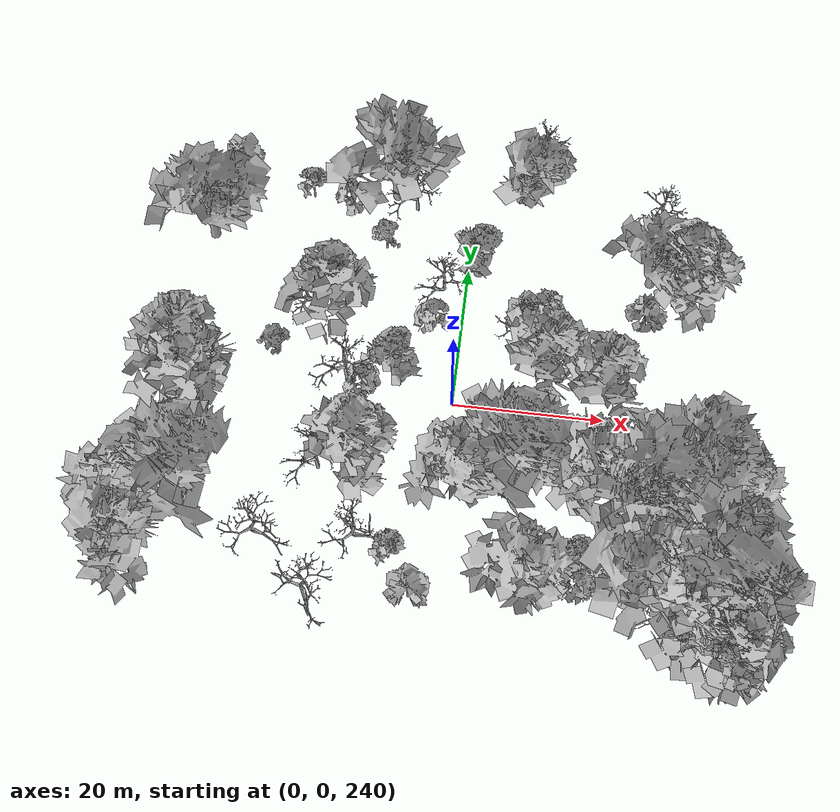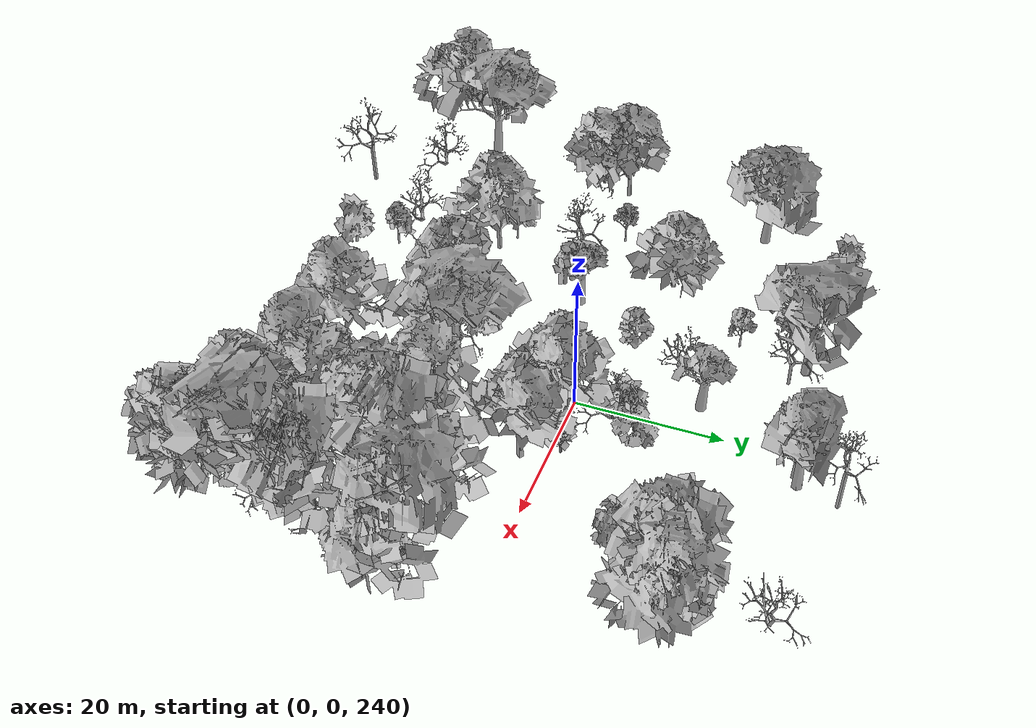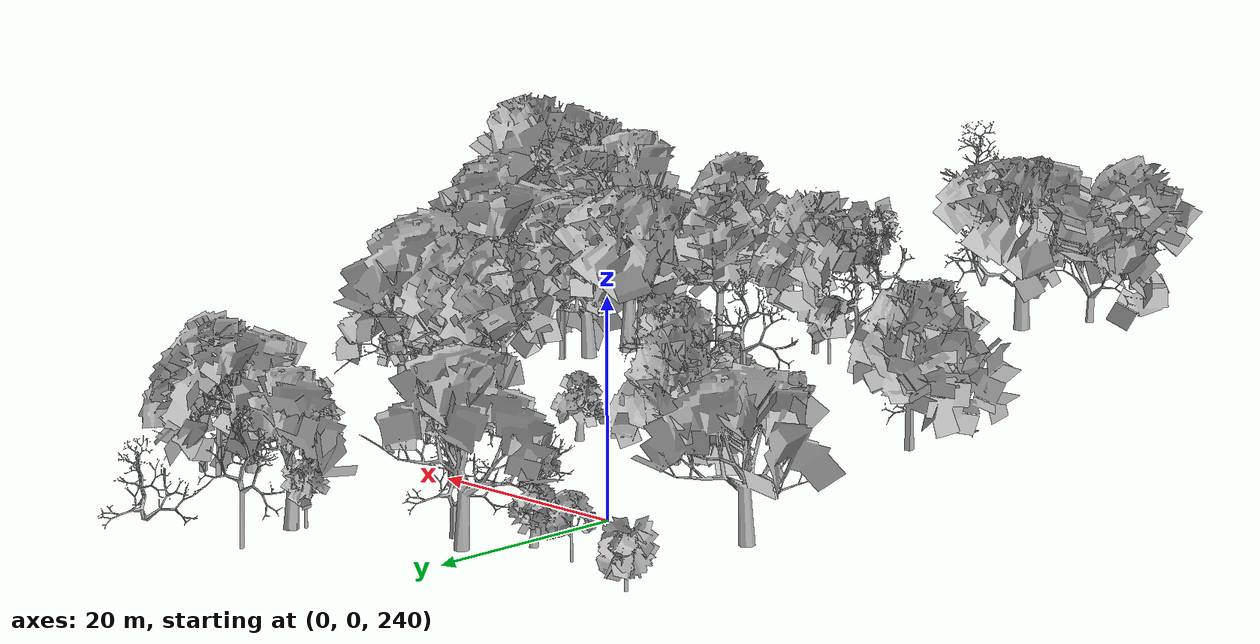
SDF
<sdf version="1.6">
 <world name="default">
  <light name="sun" type="directional">
   <pose>0 0 10 0 -0 0</pose>
   <diffuse>0.8 0.8 0.8 1</diffuse>
   <specular>0.2 0.2 0.2 1</specular>
   <attenuation>
    <range>1000</range>
    <constant>0.9</constant>
    <linear>0.01</linear>
    <quadratic>0.001</quadratic>
   </attenuation>
   <direction>-0.5 0.1 -0.9</direction>
  </light>
  <scene>
   <sky><clouds><speed>12</speed></clouds></sky>
   <ambient>0.4 0.4 0.4 1</ambient>
   <background>0.7 0.7 0.7 1</background>
   <shadows>1</shadows>
  </scene>
  <spherical_coordinates>
   <surface_model>EARTH_WGS84</surface_model>
   <latitude_deg>47.3977</latitude_deg>
   <longitude_deg>8.54559</longitude_deg>
   <elevation>0</elevation>
   <heading_deg>0</heading_deg>
  </spherical_coordinates>
  <physics name="default_physics" default="0" type="ode">
   <ode>
    <solver>
     <type>quick</type>
     <iters>100</iters>
     <sor>1.3</sor>
     <use_dynamic_moi_rescaling>0</use_dynamic_moi_rescaling>
    </solver>
    <constraints>
     <cfm>0</cfm>
     <erp>0.2</erp>
     <contact_max_correcting_vel>100</contact_max_correcting_vel>
     <contact_surface_layer>0.001</contact_surface_layer>
    </constraints>
   </ode>
   <max_step_size>0.002</max_step_size>
   <real_time_factor>1</real_time_factor>
   <real_time_update_rate>500</real_time_update_rate>
  </physics>
  <gravity>0 0 -9.8</gravity>
  <magnetic_field>6e-06 2.3e-05 -4.2e-05</magnetic_field>
  <atmosphere type="adiabatic"/>
  <model name="my_mesh0">
   <pose>34.4092 -20.709 248.489 0 0 -0.077044</pose>
   <static>1</static>
   <link name="body">
    <visual name="visual">
     <geometry><mesh><uri>model://trees/19.dae</uri><scale>1 1 1</scale></mesh></geometry>
    </visual>
    <collision name="collision">
     <geometry><mesh><uri>model://trees/19.dae</uri><scale>1 1 1</scale></mesh></geometry>
    </collision>
   </link>
  </model>
  <model name="my_mesh1">
   <pose>33.045 -22.724 249.559 0 -0 0.10892</pose>
   <static>1</static>
   <link name="body">
    <visual name="visual">
     <geometry><mesh><uri>model://trees/17.dae</uri><scale>1 1 1</scale></mesh></geometry>
    </visual>
    <collision name="collision">
     <geometry><mesh><uri>model://trees/17.dae</uri><scale>1 1 1</scale></mesh></geometry>
    </collision>
   </link>
  </model>
  <model name="my_mesh2">
   <pose>34.4534 -31.9423 253.007 0 -0 1.52434</pose>
   <static>1</static>
   <link name="body">
    <visual name="visual">
     <geometry><mesh><uri>model://trees/12.dae</uri><scale>1 1 1</scale></mesh></geometry>
    </visual>
    <collision name="collision">
     <geometry><mesh><uri>model://trees/12.dae</uri><scale>1 1 1</scale></mesh></geometry>
    </collision>
   </link>
  </model>
  <model name="my_mesh3">
   <pose>35.0355 -8.75063 244.764 0 0 -1.3783</pose>
   <static>1</static>
   <link name="body">
    <visual name="visual">
     <geometry><mesh><uri>model://trees/1.dae</uri><scale>1 1 1</scale></mesh></geometry>
    </visual>
    <collision name="collision">
     <geometry><mesh><uri>model://trees/1.dae</uri><scale>1 1 1</scale></mesh></geometry>
    </collision>
   </link>
  </model>
  <model name="my_mesh4">
   <pose>35.7739 -26.6644 251.328 0 -0 1.35673</pose>
   <static>1</static>
   <link name="body">
    <visual name="visual">
     <geometry><mesh><uri>model://trees/4.dae</uri><scale>1 1 1</scale></mesh></geometry>
    </visual>
    <collision name="collision">
     <geometry><mesh><uri>model://trees/4.dae</uri><scale>1 1 1</scale></mesh></geometry>
    </collision>
   </link>
  </model>
  <model name="my_mesh5">
   <pose>35.1608 -34.8266 254.46 0 -0 1.05813</pose>
   <static>1</static>
   <link name="body">
    <visual name="visual">
     <geometry><mesh><uri>model://trees/7.dae</uri><scale>1 1 1</scale></mesh></geometry>
    </visual>
    <collision name="collision">
     <geometry><mesh><uri>model://trees/7.dae</uri><scale>1 1 1</scale></mesh></geometry>
    </collision>
   </link>
  </model>
  <model name="my_mesh6">
   <pose>31.8572 -24.2923 250.301 0 0 -1.06784</pose>
   <static>1</static>
   <link name="body">
    <visual name="visual">
     <geometry><mesh><uri>model://trees/14.dae</uri><scale>1 1 1</scale></mesh></geometry>
    </visual>
    <collision name="collision">
     <geometry><mesh><uri>model://trees/14.dae</uri><scale>1 1 1</scale></mesh></geometry>
    </collision>
   </link>
  </model>
  <model name="my_mesh7">
   <pose>28.3298 -21.8858 250.316 0 -0 1.36054</pose>
   <static>1</static>
   <link name="body">
    <visual name="visual">
     <geometry><mesh><uri>model://trees/2.dae</uri><scale>1 1 1</scale></mesh></geometry>
    </visual>
    <collision name="collision">
     <geometry><mesh><uri>model://trees/2.dae</uri><scale>1 1 1</scale></mesh></geometry>
    </collision>
   </link>
  </model>
  <model name="my_mesh8">
   <pose>35.5363 -31.2773 252.821 0 -0 0.125793</pose>
   <static>1</static>
   <link name="body">
    <visual name="visual">
     <geometry><mesh><uri>model://trees/13.dae</uri><scale>1 1 1</scale></mesh></geometry>
    </visual>
    <collision name="collision">
     <geometry><mesh><uri>model://trees/13.dae</uri><scale>1 1 1</scale></mesh></geometry>
    </collision>
   </link>
  </model>
  <model name="my_mesh9">
   <pose>35.8994 -9.88777 245.362 0 0 -0.838774</pose>
   <static>1</static>
   <link name="body">
    <visual name="visual">
     <geometry><mesh><uri>model://trees/12.dae</uri><scale>1 1 1</scale></mesh></geometry>
    </visual>
    <collision name="collision">
     <geometry><mesh><uri>model://trees/12.dae</uri><scale>1 1 1</scale></mesh></geometry>
    </collision>
   </link>
  </model>
  <model name="my_mesh10">
   <pose>34.8921 -32.9507 253.702 0 -0 0.903182</pose>
   <static>1</static>
   <link name="body">
    <visual name="visual">
     <geometry><mesh><uri>model://trees/12.dae</uri><scale>1 1 1</scale></mesh></geometry>
    </visual>
    <collision name="collision">
     <geometry><mesh><uri>model://trees/12.dae</uri><scale>1 1 1</scale></mesh></geometry>
    </collision>
   </link>
  </model>
  <model name="my_mesh11">
   <pose>35.0666 -19.6369 248.384 0 0 -1.01804</pose>
   <static>1</static>
   <link name="body">
    <visual name="visual">
     <geometry><mesh><uri>model://trees/14.dae</uri><scale>1 1 1</scale></mesh></geometry>
    </visual>
    <collision name="collision">
     <geometry><mesh><uri>model://trees/14.dae</uri><scale>1 1 1</scale></mesh></geometry>
    </collision>
   </link>
  </model>
  <model name="my_mesh12">
   <pose>35.368 -16.9697 247.311 0 0 -0.239199</pose>
   <static>1</static>
   <link name="body">
    <visual name="visual">
     <geometry><mesh><uri>model://trees/19.dae</uri><scale>1 1 1</scale></mesh></geometry>
    </visual>
    <collision name="collision">
     <geometry><mesh><uri>model://trees/19.dae</uri><scale>1 1 1</scale></mesh></geometry>
    </collision>
   </link>
  </model>
  <model name="my_mesh13">
   <pose>35.2895 -27.2689 251.562 0 -0 1.1609</pose>
   <static>1</static>
   <link name="body">
    <visual name="visual">
     <geometry><mesh><uri>model://trees/14.dae</uri><scale>1 1 1</scale></mesh></geometry>
    </visual>
    <collision name="collision">
     <geometry><mesh><uri>model://trees/14.dae</uri><scale>1 1 1</scale></mesh></geometry>
    </collision>
   </link>
  </model>
  <model name="my_mesh14">
   <pose>29.0781 -28.1886 252.11 0 -0 1.07024</pose>
   <static>1</static>
   <link name="body">
    <visual name="visual">
     <geometry><mesh><uri>model://trees/15.dae</uri><scale>1 1 1</scale></mesh></geometry>
    </visual>
    <collision name="collision">
     <geometry><mesh><uri>model://trees/15.dae</uri><scale>1 1 1</scale></mesh></geometry>
    </collision>
   </link>
  </model>
  <model name="my_mesh15">
   <pose>33.3966 -20.8468 248.642 0 -0 1.34337</pose>
   <static>1</static>
   <link name="body">
    <visual name="visual">
     <geometry><mesh><uri>model://trees/16.dae</uri><scale>1 1 1</scale></mesh></geometry>
    </visual>
    <collision name="collision">
     <geometry><mesh><uri>model://trees/16.dae</uri><scale>1 1 1</scale></mesh></geometry>
    </collision>
   </link>
  </model>
  <model name="my_mesh16">
   <pose>34.9242 -13.7099 246.125 0 -0 1.54237</pose>
   <static>1</static>
   <link name="body">
    <visual name="visual">
     <geometry><mesh><uri>model://trees/1.dae</uri><scale>1 1 1</scale></mesh></geometry>
    </visual>
    <collision name="collision">
     <geometry><mesh><uri>model://trees/1.dae</uri><scale>1 1 1</scale></mesh></geometry>
    </collision>
   </link>
  </model>
  <model name="my_mesh17">
   <pose>28.7213 -32.0403 253.013 0 0 -0.090279</pose>
   <static>1</static>
   <link name="body">
    <visual name="visual">
     <geometry><mesh><uri>model://trees/6.dae</uri><scale>1 1 1</scale></mesh></geometry>
    </visual>
    <collision name="collision">
     <geometry><mesh><uri>model://trees/6.dae</uri><scale>1 1 1</scale></mesh></geometry>
    </collision>
   </link>
  </model>
  <model name="my_mesh18">
   <pose>29.9117 -25.1239 250.972 0 -0 1.32643</pose>
   <static>1</static>
   <link name="body">
    <visual name="visual">
     <geometry><mesh><uri>model://trees/15.dae</uri><scale>1 1 1</scale></mesh></geometry>
    </visual>
    <collision name="collision">
     <geometry><mesh><uri>model://trees/15.dae</uri><scale>1 1 1</scale></mesh></geometry>
    </collision>
   </link>
  </model>
  <model name="my_mesh19">
   <pose>35.9972 -25.1492 250.808 0 0 -0.62607</pose>
   <static>1</static>
   <link name="body">
    <visual name="visual">
     <geometry><mesh><uri>model://trees/6.dae</uri><scale>1 1 1</scale></mesh></geometry>
    </visual>
    <collision name="collision">
     <geometry><mesh><uri>model://trees/6.dae</uri><scale>1 1 1</scale></mesh></geometry>
    </collision>
   </link>
  </model>
  <model name="my_mesh20">
   <pose>35.4079 -34.3158 254.117 0 0 -0.93915</pose>
   <static>1</static>
   <link name="body">
    <visual name="visual">
     <geometry><mesh><uri>model://trees/1.dae</uri><scale>1 1 1</scale></mesh></geometry>
    </visual>
    <collision name="collision">
     <geometry><mesh><uri>model://trees/1.dae</uri><scale>1 1 1</scale></mesh></geometry>
    </collision>
   </link>
  </model>
  <model name="my_mesh21">
   <pose>31.965 -20.672 248.949 0 0 -1.16144</pose>
   <static>1</static>
   <link name="body">
    <visual name="visual">
     <geometry><mesh><uri>model://trees/17.dae</uri><scale>1 1 1</scale></mesh></geometry>
    </visual>
    <collision name="collision">
     <geometry><mesh><uri>model://trees/17.dae</uri><scale>1 1 1</scale></mesh></geometry>
    </collision>
   </link>
  </model>
  <model name="my_mesh22">
   <pose>33.1102 -21.3474 248.931 0 0 -1.0466</pose>
   <static>1</static>
   <link name="body">
    <visual name="visual">
     <geometry><mesh><uri>model://trees/9.dae</uri><scale>1 1 1</scale></mesh></geometry>
    </visual>
    <collision name="collision">
     <geometry><mesh><uri>model://trees/9.dae</uri><scale>1 1 1</scale></mesh></geometry>
    </collision>
   </link>
  </model>
  <model name="my_mesh23">
   <pose>35.971 -20.7977 248.856 0 -0 1.2378</pose>
   <static>1</static>
   <link name="body">
    <visual name="visual">
     <geometry><mesh><uri>model://trees/16.dae</uri><scale>1 1 1</scale></mesh></geometry>
    </visual>
    <collision name="collision">
     <geometry><mesh><uri>model://trees/16.dae</uri><scale>1 1 1</scale></mesh></geometry>
    </collision>
   </link>
  </model>
  <model name="my_mesh24">
   <pose>33.5265 -32.3898 253.4 0 -0 0.12638</pose>
   <static>1</static>
   <link name="body">
    <visual name="visual">
     <geometry><mesh><uri>model://trees/3.dae</uri><scale>1 1 1</scale></mesh></geometry>
    </visual>
    <collision name="collision">
     <geometry><mesh><uri>model://trees/3.dae</uri><scale>1 1 1</scale></mesh></geometry>
    </collision>
   </link>
  </model>
  <model name="my_mesh25">
   <pose>35.0981 -30.0957 252.27 0 -0 1.2369</pose>
   <static>1</static>
   <link name="body">
    <visual name="visual">
     <geometry><mesh><uri>model://trees/13.dae</uri><scale>1 1 1</scale></mesh></geometry>
    </visual>
    <collision name="collision">
     <geometry><mesh><uri>model://trees/13.dae</uri><scale>1 1 1</scale></mesh></geometry>
    </collision>
   </link>
  </model>
  <model name="my_mesh26">
   <pose>35.7482 -14.1029 246.372 0 0 -1.42816</pose>
   <static>1</static>
   <link name="body">
    <visual name="visual">
     <geometry><mesh><uri>model://trees/5.dae</uri><scale>1 1 1</scale></mesh></geometry>
    </visual>
    <collision name="collision">
     <geometry><mesh><uri>model://trees/5.dae</uri><scale>1 1 1</scale></mesh></geometry>
    </collision>
   </link>
  </model>
  <model name="my_mesh27">
   <pose>29.1155 -29.2898 252.337 0 -0 1.1691</pose>
   <static>1</static>
   <link name="body">
    <visual name="visual">
     <geometry><mesh><uri>model://trees/12.dae</uri><scale>1 1 1</scale></mesh></geometry>
    </visual>
    <collision name="collision">
     <geometry><mesh><uri>model://trees/12.dae</uri><scale>1 1 1</scale></mesh></geometry>
    </collision>
   </link>
  </model>
  <model name="my_mesh28">
   <pose>34.6977 -26.3449 250.967 0 0 -0.231401</pose>
   <static>1</static>
   <link name="body">
    <visual name="visual">
     <geometry><mesh><uri>model://trees/10.dae</uri><scale>1 1 1</scale></mesh></geometry>
    </visual>
    <collision name="collision">
     <geometry><mesh><uri>model://trees/10.dae</uri><scale>1 1 1</scale></mesh></geometry>
    </collision>
   </link>
  </model>
  <model name="my_mesh29">
   <pose>34.1501 -28.5294 251.729 0 0 -0.093509</pose>
   <static>1</static>
   <link name="body">
    <visual name="visual">
     <geometry><mesh><uri>model://trees/14.dae</uri><scale>1 1 1</scale></mesh></geometry>
    </visual>
    <collision name="collision">
     <geometry><mesh><uri>model://trees/14.dae</uri><scale>1 1 1</scale></mesh></geometry>
    </collision>
   </link>
  </model>
  <model name="my_mesh30">
   <pose>35.3026 -34.1232 254.117 0 -0 0.911018</pose>
   <static>1</static>
   <link name="body">
    <visual name="visual">
     <geometry><mesh><uri>model://trees/0.dae</uri><scale>1 1 1</scale></mesh></geometry>
    </visual>
    <collision name="collision">
     <geometry><mesh><uri>model://trees/0.dae</uri><scale>1 1 1</scale></mesh></geometry>
    </collision>
   </link>
  </model>
  <model name="my_mesh31">
   <pose>33.272 -29.6755 252.104 0 0 -1.36349</pose>
   <static>1</static>
   <link name="body">
    <visual name="visual">
     <geometry><mesh><uri>model://trees/3.dae</uri><scale>1 1 1</scale></mesh></geometry>
    </visual>
    <collision name="collision">
     <geometry><mesh><uri>model://trees/3.dae</uri><scale>1 1 1</scale></mesh></geometry>
    </collision>
   </link>
  </model>
  <model name="my_mesh32">
   <pose>21.0194 -26.9574 253.632 0 -0 1.55134</pose>
   <static>1</static>
   <link name="body">
    <visual name="visual">
     <geometry><mesh><uri>model://trees/4.dae</uri><scale>1 1 1</scale></mesh></geometry>
    </visual>
    <collision name="collision">
     <geometry><mesh><uri>model://trees/4.dae</uri><scale>1 1 1</scale></mesh></geometry>
    </collision>
   </link>
  </model>
  <model name="my_mesh33">
   <pose>11.119 10.9236 246.945 0 -0 1.31277</pose>
   <static>1</static>
   <link name="body">
    <visual name="visual">
     <geometry><mesh><uri>model://trees/4.dae</uri><scale>1 1 1</scale></mesh></geometry>
    </visual>
    <collision name="collision">
     <geometry><mesh><uri>model://trees/4.dae</uri><scale>1 1 1</scale></mesh></geometry>
    </collision>
   </link>
  </model>
  <model name="my_mesh34">
   <pose>30.8941 -9.21117 245.86 0 0 -0.54359</pose>
   <static>1</static>
   <link name="body">
    <visual name="visual">
     <geometry><mesh><uri>model://trees/9.dae</uri><scale>1 1 1</scale></mesh></geometry>
    </visual>
    <collision name="collision">
     <geometry><mesh><uri>model://trees/9.dae</uri><scale>1 1 1</scale></mesh></geometry>
    </collision>
   </link>
  </model>
  <model name="my_mesh35">
   <pose>26.0179 -26.0619 252.192 0 -0 0.266957</pose>
   <static>1</static>
   <link name="body">
    <visual name="visual">
     <geometry><mesh><uri>model://trees/17.dae</uri><scale>1 1 1</scale></mesh></geometry>
    </visual>
    <collision name="collision">
     <geometry><mesh><uri>model://trees/17.dae</uri><scale>1 1 1</scale></mesh></geometry>
    </collision>
   </link>
  </model>
  <model name="my_mesh36">
   <pose>8.39136 9.22707 247.374 0 0 -0.845959</pose>
   <static>1</static>
   <link name="body">
    <visual name="visual">
     <geometry><mesh><uri>model://trees/5.dae</uri><scale>1 1 1</scale></mesh></geometry>
    </visual>
    <collision name="collision">
     <geometry><mesh><uri>model://trees/5.dae</uri><scale>1 1 1</scale></mesh></geometry>
    </collision>
   </link>
  </model>
  <model name="my_mesh37">
   <pose>23.8225 12.2998 244.997 0 0 -0.506443</pose>
   <static>1</static>
   <link name="body">
    <visual name="visual">
     <geometry><mesh><uri>model://trees/4.dae</uri><scale>1 1 1</scale></mesh></geometry>
    </visual>
    <collision name="collision">
     <geometry><mesh><uri>model://trees/4.dae</uri><scale>1 1 1</scale></mesh></geometry>
    </collision>
   </link>
  </model>
  <model name="my_mesh38">
   <pose>11.1297 -13.6024 250.77 0 0 -1.43948</pose>
   <static>1</static>
   <link name="body">
    <visual name="visual">
     <geometry><mesh><uri>model://trees/11.dae</uri><scale>1 1 1</scale></mesh></geometry>
    </visual>
    <collision name="collision">
     <geometry><mesh><uri>model://trees/11.dae</uri><scale>1 1 1</scale></mesh></geometry>
    </collision>
   </link>
  </model>
  <model name="my_mesh39">
   <pose>-12.6541 -3.62767 251.851 0 0 -0.813717</pose>
   <static>1</static>
   <link name="body">
    <visual name="visual">
     <geometry><mesh><uri>model://trees/16.dae</uri><scale>1 1 1</scale></mesh></geometry>
    </visual>
    <collision name="collision">
     <geometry><mesh><uri>model://trees/16.dae</uri><scale>1 1 1</scale></mesh></geometry>
    </collision>
   </link>
  </model>
  <model name="my_mesh40">
   <pose>10.4104 -26.6352 254.684 0 0 -0.238079</pose>
   <static>1</static>
   <link name="body">
    <visual name="visual">
     <geometry><mesh><uri>model://trees/12.dae</uri><scale>1 1 1</scale></mesh></geometry>
    </visual>
    <collision name="collision">
     <geometry><mesh><uri>model://trees/12.dae</uri><scale>1 1 1</scale></mesh></geometry>
    </collision>
   </link>
  </model>
  <model name="my_mesh41">
   <pose>25.2871 -8.73668 247.3 0 0 -0.359366</pose>
   <static>1</static>
   <link name="body">
    <visual name="visual">
     <geometry><mesh><uri>model://trees/12.dae</uri><scale>1 1 1</scale></mesh></geometry>
    </visual>
    <collision name="collision">
     <geometry><mesh><uri>model://trees/12.dae</uri><scale>1 1 1</scale></mesh></geometry>
    </collision>
   </link>
  </model>
  <model name="my_mesh42">
   <pose>28.7871 -12.9958 246.953 0 -0 1.47405</pose>
   <static>1</static>
   <link name="body">
    <visual name="visual">
     <geometry><mesh><uri>model://trees/16.dae</uri><scale>1 1 1</scale></mesh></geometry>
    </visual>
    <collision name="collision">
     <geometry><mesh><uri>model://trees/16.dae</uri><scale>1 1 1</scale></mesh></geometry>
    </collision>
   </link>
  </model>
  <model name="my_mesh43">
   <pose>-3.36773 6.78929 249.15 0 -0 0.861656</pose>
   <static>1</static>
   <link name="body">
    <visual name="visual">
     <geometry><mesh><uri>model://trees/0.dae</uri><scale>1 1 1</scale></mesh></geometry>
    </visual>
    <collision name="collision">
     <geometry><mesh><uri>model://trees/0.dae</uri><scale>1 1 1</scale></mesh></geometry>
    </collision>
   </link>
  </model>
  <model name="my_mesh44">
   <pose>5.91485 -13.3321 251.639 0 0 -0.901411</pose>
   <static>1</static>
   <link name="body">
    <visual name="visual">
     <geometry><mesh><uri>model://trees/18.dae</uri><scale>1 1 1</scale></mesh></geometry>
    </visual>
    <collision name="collision">
     <geometry><mesh><uri>model://trees/18.dae</uri><scale>1 1 1</scale></mesh></geometry>
    </collision>
   </link>
  </model>
  <model name="my_mesh45">
   <pose>22.5311 -16.9752 250.012 0 0 -0.174917</pose>
   <static>1</static>
   <link name="body">
    <visual name="visual">
     <geometry><mesh><uri>model://trees/8.dae</uri><scale>1 1 1</scale></mesh></geometry>
    </visual>
    <collision name="collision">
     <geometry><mesh><uri>model://trees/8.dae</uri><scale>1 1 1</scale></mesh></geometry>
    </collision>
   </link>
  </model>
  <model name="my_mesh46">
   <pose>8.67164 9.01265 247.374 0 -0 0.460806</pose>
   <static>1</static>
   <link name="body">
    <visual name="visual">
     <geometry><mesh><uri>model://trees/6.dae</uri><scale>1 1 1</scale></mesh></geometry>
    </visual>
    <collision name="collision">
     <geometry><mesh><uri>model://trees/6.dae</uri><scale>1 1 1</scale></mesh></geometry>
    </collision>
   </link>
  </model>
  <model name="my_mesh47">
   <pose>17.2348 -27.6362 254.675 0 0 -1.38482</pose>
   <static>1</static>
   <link name="body">
    <visual name="visual">
     <geometry><mesh><uri>model://trees/0.dae</uri><scale>1 1 1</scale></mesh></geometry>
    </visual>
    <collision name="collision">
     <geometry><mesh><uri>model://trees/0.dae</uri><scale>1 1 1</scale></mesh></geometry>
    </collision>
   </link>
  </model>
  <model name="my_mesh48">
   <pose>-1.57248 -31.1219 257.363 0 0 -0.833231</pose>
   <static>1</static>
   <link name="body">
    <visual name="visual">
     <geometry><mesh><uri>model://trees/5.dae</uri><scale>1 1 1</scale></mesh></geometry>
    </visual>
    <collision name="collision">
     <geometry><mesh><uri>model://trees/5.dae</uri><scale>1 1 1</scale></mesh></geometry>
    </collision>
   </link>
  </model>
  <model name="my_mesh49">
   <pose>-2.58745 13.318 247.284 0 0 -0.662197</pose>
   <static>1</static>
   <link name="body">
    <visual name="visual">
     <geometry><mesh><uri>model://trees/18.dae</uri><scale>1 1 1</scale></mesh></geometry>
    </visual>
    <collision name="collision">
     <geometry><mesh><uri>model://trees/18.dae</uri><scale>1 1 1</scale></mesh></geometry>
    </collision>
   </link>
  </model>
  <model name="my_mesh50">
   <pose>8.62303 -15.0074 251.508 0 -0 1.50107</pose>
   <static>1</static>
   <link name="body">
    <visual name="visual">
     <geometry><mesh><uri>model://trees/4.dae</uri><scale>1 1 1</scale></mesh></geometry>
    </visual>
    <collision name="collision">
     <geometry><mesh><uri>model://trees/4.dae</uri><scale>1 1 1</scale></mesh></geometry>
    </collision>
   </link>
  </model>
  <model name="my_mesh51">
   <pose>1.98411 -15.785 252.372 0 0 -1.36285</pose>
   <static>1</static>
   <link name="body">
    <visual name="visual">
     <geometry><mesh><uri>model://trees/14.dae</uri><scale>1 1 1</scale></mesh></geometry>
    </visual>
    <collision name="collision">
     <geometry><mesh><uri>model://trees/14.dae</uri><scale>1 1 1</scale></mesh></geometry>
    </collision>
   </link>
  </model>
  <model name="my_mesh52">
   <pose>11.2786 1.56778 248.904 0 0 -0.22262</pose>
   <static>1</static>
   <link name="body">
    <visual name="visual">
     <geometry><mesh><uri>model://trees/14.dae</uri><scale>1 1 1</scale></mesh></geometry>
    </visual>
    <collision name="collision">
     <geometry><mesh><uri>model://trees/14.dae</uri><scale>1 1 1</scale></mesh></geometry>
    </collision>
   </link>
  </model>
  <model name="my_mesh53">
   <pose>14.8429 -12.5141 249.763 0 0 -0.942703</pose>
   <static>1</static>
   <link name="body">
    <visual name="visual">
     <geometry><mesh><uri>model://trees/7.dae</uri><scale>1 1 1</scale></mesh></geometry>
    </visual>
    <collision name="collision">
     <geometry><mesh><uri>model://trees/7.dae</uri><scale>1 1 1</scale></mesh></geometry>
    </collision>
   </link>
  </model>
  <model name="my_mesh54">
   <pose>21.9441 -25.7696 252.961 0 0 -0.439381</pose>
   <static>1</static>
   <link name="body">
    <visual name="visual">
     <geometry><mesh><uri>model://trees/11.dae</uri><scale>1 1 1</scale></mesh></geometry>
    </visual>
    <collision name="collision">
     <geometry><mesh><uri>model://trees/11.dae</uri><scale>1 1 1</scale></mesh></geometry>
    </collision>
   </link>
  </model>
  <model name="my_mesh55">
   <pose>8.44232 7.56859 247.712 0 -0 0.698009</pose>
   <static>1</static>
   <link name="body">
    <visual name="visual">
     <geometry><mesh><uri>model://trees/18.dae</uri><scale>1 1 1</scale></mesh></geometry>
    </visual>
    <collision name="collision">
     <geometry><mesh><uri>model://trees/18.dae</uri><scale>1 1 1</scale></mesh></geometry>
    </collision>
   </link>
  </model>
  <model name="my_mesh56">
   <pose>34.4975 -13.8823 246.372 0 0 -0.064742</pose>
   <static>1</static>
   <link name="body">
    <visual name="visual">
     <geometry><mesh><uri>model://trees/0.dae</uri><scale>1 1 1</scale></mesh></geometry>
    </visual>
    <collision name="collision">
     <geometry><mesh><uri>model://trees/0.dae</uri><scale>1 1 1</scale></mesh></geometry>
    </collision>
   </link>
  </model>
  <model name="my_mesh57">
   <pose>-4.49882 -26.563 256.218 0 0 -0.12235</pose>
   <static>1</static>
   <link name="body">
    <visual name="visual">
     <geometry><mesh><uri>model://trees/6.dae</uri><scale>1 1 1</scale></mesh></geometry>
    </visual>
    <collision name="collision">
     <geometry><mesh><uri>model://trees/6.dae</uri><scale>1 1 1</scale></mesh></geometry>
    </collision>
   </link>
  </model>
  <model name="my_mesh58">
   <pose>17.473 -11.7639 249.24 0 0 -0.247267</pose>
   <static>1</static>
   <link name="body">
    <visual name="visual">
     <geometry><mesh><uri>model://trees/15.dae</uri><scale>1 1 1</scale></mesh></geometry>
    </visual>
    <collision name="collision">
     <geometry><mesh><uri>model://trees/15.dae</uri><scale>1 1 1</scale></mesh></geometry>
    </collision>
   </link>
  </model>
  <model name="my_mesh59">
   <pose>3.83792 -10.9328 251.524 0 0 -1.22255</pose>
   <static>1</static>
   <link name="body">
    <visual name="visual">
     <geometry><mesh><uri>model://trees/5.dae</uri><scale>1 1 1</scale></mesh></geometry>
    </visual>
    <collision name="collision">
     <geometry><mesh><uri>model://trees/5.dae</uri><scale>1 1 1</scale></mesh></geometry>
    </collision>
   </link>
  </model>
  <model name="my_mesh60">
   <pose>-19.7531 -26.2993 259.872 0 -0 1.36034</pose>
   <static>1</static>
   <link name="body">
    <visual name="visual">
     <geometry><mesh><uri>model://trees/19.dae</uri><scale>1 1 1</scale></mesh></geometry>
    </visual>
    <collision name="collision">
     <geometry><mesh><uri>model://trees/19.dae</uri><scale>1 1 1</scale></mesh></geometry>
    </collision>
   </link>
  </model>
  <model name="my_mesh61">
   <pose>-28.1746 -21.9799 258.216 0 -0 0.793224</pose>
   <static>1</static>
   <link name="body">
    <visual name="visual">
     <geometry><mesh><uri>model://trees/9.dae</uri><scale>1 1 1</scale></mesh></geometry>
    </visual>
    <collision name="collision">
     <geometry><mesh><uri>model://trees/9.dae</uri><scale>1 1 1</scale></mesh></geometry>
    </collision>
   </link>
  </model>
  <model name="my_mesh62">
   <pose>24.2441 -22.1854 251.328 0 0 -0.509422</pose>
   <static>1</static>
   <link name="body">
    <visual name="visual">
     <geometry><mesh><uri>model://trees/15.dae</uri><scale>1 1 1</scale></mesh></geometry>
    </visual>
    <collision name="collision">
     <geometry><mesh><uri>model://trees/15.dae</uri><scale>1 1 1</scale></mesh></geometry>
    </collision>
   </link>
  </model>
  <model name="my_mesh63">
   <pose>-8.53385 -24.8394 257.858 0 -0 1.54594</pose>
   <static>1</static>
   <link name="body">
    <visual name="visual">
     <geometry><mesh><uri>model://trees/18.dae</uri><scale>1 1 1</scale></mesh></geometry>
    </visual>
    <collision name="collision">
     <geometry><mesh><uri>model://trees/18.dae</uri><scale>1 1 1</scale></mesh></geometry>
    </collision>
   </link>
  </model>
  <model name="my_mesh64">
   <pose>-16.3432 24.993 245.854 0 0 -0.252171</pose>
   <static>1</static>
   <link name="body">
    <visual name="visual">
     <geometry><mesh><uri>model://trees/0.dae</uri><scale>1 1 1</scale></mesh></geometry>
    </visual>
    <collision name="collision">
     <geometry><mesh><uri>model://trees/0.dae</uri><scale>1 1 1</scale></mesh></geometry>
    </collision>
   </link>
  </model>
  <model name="my_mesh65">
   <pose>-10.5696 -4.2572 251.863 0 0 -1.27779</pose>
   <static>1</static>
   <link name="body">
    <visual name="visual">
     <geometry><mesh><uri>model://trees/1.dae</uri><scale>1 1 1</scale></mesh></geometry>
    </visual>
    <collision name="collision">
     <geometry><mesh><uri>model://trees/1.dae</uri><scale>1 1 1</scale></mesh></geometry>
    </collision>
   </link>
  </model>
  <model name="my_mesh66">
   <pose>-10.9266 18.9135 246.624 0 -0 1.04968</pose>
   <static>1</static>
   <link name="body">
    <visual name="visual">
     <geometry><mesh><uri>model://trees/3.dae</uri><scale>1 1 1</scale></mesh></geometry>
    </visual>
    <collision name="collision">
     <geometry><mesh><uri>model://trees/3.dae</uri><scale>1 1 1</scale></mesh></geometry>
    </collision>
   </link>
  </model>
  <model name="my_mesh67">
   <pose>7.8323 30.0557 243.695 0 0 -1.04013</pose>
   <static>1</static>
   <link name="body">
    <visual name="visual">
     <geometry><mesh><uri>model://trees/11.dae</uri><scale>1 1 1</scale></mesh></geometry>
    </visual>
    <collision name="collision">
     <geometry><mesh><uri>model://trees/11.dae</uri><scale>1 1 1</scale></mesh></geometry>
    </collision>
   </link>
  </model>
  <model name="my_mesh68">
   <pose>-33.7294 17.5721 247.943 0 0 -0.844059</pose>
   <static>1</static>
   <link name="body">
    <visual name="visual">
     <geometry><mesh><uri>model://trees/9.dae</uri><scale>1 1 1</scale></mesh></geometry>
    </visual>
    <collision name="collision">
     <geometry><mesh><uri>model://trees/9.dae</uri><scale>1 1 1</scale></mesh></geometry>
    </collision>
   </link>
  </model>
  <model name="my_mesh69">
   <pose>-14.2521 -16.227 255.148 0 0 -0.624472</pose>
   <static>1</static>
   <link name="body">
    <visual name="visual">
     <geometry><mesh><uri>model://trees/17.dae</uri><scale>1 1 1</scale></mesh></geometry>
    </visual>
    <collision name="collision">
     <geometry><mesh><uri>model://trees/17.dae</uri><scale>1 1 1</scale></mesh></geometry>
    </collision>
   </link>
  </model>
  <model name="my_mesh70">
   <pose>18.4837 -0.451636 248.125 0 -0 0.153183</pose>
   <static>1</static>
   <link name="body">
    <visual name="visual">
     <geometry><mesh><uri>model://trees/14.dae</uri><scale>1 1 1</scale></mesh></geometry>
    </visual>
    <collision name="collision">
     <geometry><mesh><uri>model://trees/14.dae</uri><scale>1 1 1</scale></mesh></geometry>
    </collision>
   </link>
  </model>
  <model name="my_mesh71">
   <pose>-31.6182 29.5006 246.049 0 0 -1.28241</pose>
   <static>1</static>
   <link name="body">
    <visual name="visual">
     <geometry><mesh><uri>model://trees/5.dae</uri><scale>1 1 1</scale></mesh></geometry>
    </visual>
    <collision name="collision">
     <geometry><mesh><uri>model://trees/5.dae</uri><scale>1 1 1</scale></mesh></geometry>
    </collision>
   </link>
  </model>
  <model name="my_mesh72">
   <pose>-10.7127 -14.7133 254.252 0 -0 0.559611</pose>
   <static>1</static>
   <link name="body">
    <visual name="visual">
     <geometry><mesh><uri>model://trees/15.dae</uri><scale>1 1 1</scale></mesh></geometry>
    </visual>
    <collision name="collision">
     <geometry><mesh><uri>model://trees/15.dae</uri><scale>1 1 1</scale></mesh></geometry>
    </collision>
   </link>
  </model>
  <model name="my_mesh73">
   <pose>29.0665 -18.3234 248.799 0 0 -0.427403</pose>
   <static>1</static>
   <link name="body">
    <visual name="visual">
     <geometry><mesh><uri>model://trees/19.dae</uri><scale>1 1 1</scale></mesh></geometry>
    </visual>
    <collision name="collision">
     <geometry><mesh><uri>model://trees/19.dae</uri><scale>1 1 1</scale></mesh></geometry>
    </collision>
   </link>
  </model>
  <model name="my_mesh74">
   <pose>-7.73597 26.0809 245.15 0 0 -0.788011</pose>
   <static>1</static>
   <link name="body">
    <visual name="visual">
     <geometry><mesh><uri>model://trees/17.dae</uri><scale>1 1 1</scale></mesh></geometry>
    </visual>
    <collision name="collision">
     <geometry><mesh><uri>model://trees/17.dae</uri><scale>1 1 1</scale></mesh></geometry>
    </collision>
   </link>
  </model>
  <model name="my_mesh75">
   <pose>-34.744 -23.2976 259.745 0 0 -1.37614</pose>
   <static>1</static>
   <link name="body">
    <visual name="visual">
     <geometry><mesh><uri>model://trees/13.dae</uri><scale>1 1 1</scale></mesh></geometry>
    </visual>
    <collision name="collision">
     <geometry><mesh><uri>model://trees/13.dae</uri><scale>1 1 1</scale></mesh></geometry>
    </collision>
   </link>
  </model>
  <model name="my_mesh76">
   <pose>-33.4733 -30.2675 261.202 0 -0 0.024584</pose>
   <static>1</static>
   <link name="body">
    <visual name="visual">
     <geometry><mesh><uri>model://trees/13.dae</uri><scale>1 1 1</scale></mesh></geometry>
    </visual>
    <collision name="collision">
     <geometry><mesh><uri>model://trees/13.dae</uri><scale>1 1 1</scale></mesh></geometry>
    </collision>
   </link>
  </model>
  <model name="my_mesh77">
   <pose>-21.8173 26.0159 245.891 0 0 -0.08789</pose>
   <static>1</static>
   <link name="body">
    <visual name="visual">
     <geometry><mesh><uri>model://trees/6.dae</uri><scale>1 1 1</scale></mesh></geometry>
    </visual>
    <collision name="collision">
     <geometry><mesh><uri>model://trees/6.dae</uri><scale>1 1 1</scale></mesh></geometry>
    </collision>
   </link>
  </model>
  <model name="my_mesh78">
   <pose>-22.1175 -0.341775 251.287 0 0 -1.51872</pose>
   <static>1</static>
   <link name="body">
    <visual name="visual">
     <geometry><mesh><uri>model://trees/3.dae</uri><scale>1 1 1</scale></mesh></geometry>
    </visual>
    <collision name="collision">
     <geometry><mesh><uri>model://trees/3.dae</uri><scale>1 1 1</scale></mesh></geometry>
    </collision>
   </link>
  </model>
  <model name="my_mesh79">
   <pose>25.8253 30.7192 241.204 0 0 -0.650543</pose>
   <static>1</static>
   <link name="body">
    <visual name="visual">
     <geometry><mesh><uri>model://trees/18.dae</uri><scale>1 1 1</scale></mesh></geometry>
    </visual>
    <collision name="collision">
     <geometry><mesh><uri>model://trees/18.dae</uri><scale>1 1 1</scale></mesh></geometry>
    </collision>
   </link>
  </model>
  <model name="my_mesh80">
   <pose>-12.5467 -33.7174 259.906 0 -0 0.621234</pose>
   <static>1</static>
   <link name="body">
    <visual name="visual">
     <geometry><mesh><uri>model://trees/16.dae</uri><scale>1 1 1</scale></mesh></geometry>
    </visual>
    <collision name="collision">
     <geometry><mesh><uri>model://trees/16.dae</uri><scale>1 1 1</scale></mesh></geometry>
    </collision>
   </link>
  </model>
  <model name="my_mesh81">
   <pose>6.8317 29.2723 243.838 0 -0 0.788146</pose>
   <static>1</static>
   <link name="body">
    <visual name="visual">
     <geometry><mesh><uri>model://trees/6.dae</uri><scale>1 1 1</scale></mesh></geometry>
    </visual>
    <collision name="collision">
     <geometry><mesh><uri>model://trees/6.dae</uri><scale>1 1 1</scale></mesh></geometry>
    </collision>
   </link>
  </model>
  <model name="my_mesh82">
   <pose>17.0844 -23.9296 253.56 0 -0 0.894836</pose>
   <static>1</static>
   <link name="body">
    <visual name="visual">
     <geometry><mesh><uri>model://trees/6.dae</uri><scale>1 1 1</scale></mesh></geometry>
    </visual>
    <collision name="collision">
     <geometry><mesh><uri>model://trees/6.dae</uri><scale>1 1 1</scale></mesh></geometry>
    </collision>
   </link>
  </model>
  <model name="my_mesh83">
   <pose>-32.3359 -7.39327 253.791 0 -0 0.668704</pose>
   <static>1</static>
   <link name="body">
    <visual name="visual">
     <geometry><mesh><uri>model://trees/12.dae</uri><scale>1 1 1</scale></mesh></geometry>
    </visual>
    <collision name="collision">
     <geometry><mesh><uri>model://trees/12.dae</uri><scale>1 1 1</scale></mesh></geometry>
    </collision>
   </link>
  </model>
  <model name="my_mesh84">
   <pose>-10.6446 27.8463 245.083 0 0 -1.28469</pose>
   <static>1</static>
   <link name="body">
    <visual name="visual">
     <geometry><mesh><uri>model://trees/10.dae</uri><scale>1 1 1</scale></mesh></geometry>
    </visual>
    <collision name="collision">
     <geometry><mesh><uri>model://trees/10.dae</uri><scale>1 1 1</scale></mesh></geometry>
    </collision>
   </link>
  </model>
  <model name="my_mesh85">
   <pose>1.56734 16.7671 246.124 0 -0 0.707299</pose>
   <static>1</static>
   <link name="body">
    <visual name="visual">
     <geometry><mesh><uri>model://trees/7.dae</uri><scale>1 1 1</scale></mesh></geometry>
    </visual>
    <collision name="collision">
     <geometry><mesh><uri>model://trees/7.dae</uri><scale>1 1 1</scale></mesh></geometry>
    </collision>
   </link>
  </model>
  <model name="my_mesh86">
   <pose>24.5165 19.1625 243.5 0 0 -1.43275</pose>
   <static>1</static>
   <link name="body">
    <visual name="visual">
     <geometry><mesh><uri>model://trees/8.dae</uri><scale>1 1 1</scale></mesh></geometry>
    </visual>
    <collision name="collision">
     <geometry><mesh><uri>model://trees/8.dae</uri><scale>1 1 1</scale></mesh></geometry>
    </collision>
   </link>
  </model>
  <model name="my_mesh87">
   <pose>-32.1058 -6.72866 253.654 0 0 -1.42111</pose>
   <static>1</static>
   <link name="body">
    <visual name="visual">
     <geometry><mesh><uri>model://trees/18.dae</uri><scale>1 1 1</scale></mesh></geometry>
    </visual>
    <collision name="collision">
     <geometry><mesh><uri>model://trees/18.dae</uri><scale>1 1 1</scale></mesh></geometry>
    </collision>
   </link>
  </model>
  <model name="my_mesh88">
   <pose>8.61399 35.0118 242.868 0 0 -1.40547</pose>
   <static>1</static>
   <link name="body">
    <visual name="visual">
     <geometry><mesh><uri>model://trees/16.dae</uri><scale>1 1 1</scale></mesh></geometry>
    </visual>
    <collision name="collision">
     <geometry><mesh><uri>model://trees/16.dae</uri><scale>1 1 1</scale></mesh></geometry>
    </collision>
   </link>
  </model>
  <model name="my_mesh89">
   <pose>-16.4244 8.22409 249.776 0 -0 1.19316</pose>
   <static>1</static>
   <link name="body">
    <visual name="visual">
     <geometry><mesh><uri>model://trees/12.dae</uri><scale>1 1 1</scale></mesh></geometry>
    </visual>
    <collision name="collision">
     <geometry><mesh><uri>model://trees/12.dae</uri><scale>1 1 1</scale></mesh></geometry>
    </collision>
   </link>
  </model>
  <model name="my_mesh90">
   <pose>8.40649 -12.9298 251.308 0 -0 0.532798</pose>
   <static>1</static>
   <link name="body">
    <visual name="visual">
     <geometry><mesh><uri>model://trees/9.dae</uri><scale>1 1 1</scale></mesh></geometry>
    </visual>
    <collision name="collision">
     <geometry><mesh><uri>model://trees/9.dae</uri><scale>1 1 1</scale></mesh></geometry>
    </collision>
   </link>
  </model>
  <model name="my_mesh91">
   <pose>28.0592 19.967 242.646 0 0 -0.055182</pose>
   <static>1</static>
   <link name="body">
    <visual name="visual">
     <geometry><mesh><uri>model://trees/15.dae</uri><scale>1 1 1</scale></mesh></geometry>
    </visual>
    <collision name="collision">
     <geometry><mesh><uri>model://trees/15.dae</uri><scale>1 1 1</scale></mesh></geometry>
    </collision>
   </link>
  </model>
  <model name="my_mesh92">
   <pose>-18.2083 7.4917 249.892 0 0 -0.490912</pose>
   <static>1</static>
   <link name="body">
    <visual name="visual">
     <geometry><mesh><uri>model://trees/17.dae</uri><scale>1 1 1</scale></mesh></geometry>
    </visual>
    <collision name="collision">
     <geometry><mesh><uri>model://trees/17.dae</uri><scale>1 1 1</scale></mesh></geometry>
    </collision>
   </link>
  </model>
  <model name="my_mesh93">
   <pose>-6.79796 -1.8567 251.358 0 -0 1.43049</pose>
   <static>1</static>
   <link name="body">
    <visual name="visual">
     <geometry><mesh><uri>model://trees/7.dae</uri><scale>1 1 1</scale></mesh></geometry>
    </visual>
    <collision name="collision">
     <geometry><mesh><uri>model://trees/7.dae</uri><scale>1 1 1</scale></mesh></geometry>
    </collision>
   </link>
  </model>
  <model name="my_mesh94">
   <pose>-13.7278 -13.3026 254.143 0 -0 0.254771</pose>
   <static>1</static>
   <link name="body">
    <visual name="visual">
     <geometry><mesh><uri>model://trees/6.dae</uri><scale>1 1 1</scale></mesh></geometry>
    </visual>
    <collision name="collision">
     <geometry><mesh><uri>model://trees/6.dae</uri><scale>1 1 1</scale></mesh></geometry>
    </collision>
   </link>
  </model>
  <model name="my_mesh95">
   <pose>31.189 18.9614 242.213 0 0 -0.372779</pose>
   <static>1</static>
   <link name="body">
    <visual name="visual">
     <geometry><mesh><uri>model://trees/13.dae</uri><scale>1 1 1</scale></mesh></geometry>
    </visual>
    <collision name="collision">
     <geometry><mesh><uri>model://trees/13.dae</uri><scale>1 1 1</scale></mesh></geometry>
    </collision>
   </link>
  </model>
  <model name="my_mesh96">
   <pose>24.7512 -13.7746 248.563 0 0 -1.35035</pose>
   <static>1</static>
   <link name="body">
    <visual name="visual">
     <geometry><mesh><uri>model://trees/9.dae</uri><scale>1 1 1</scale></mesh></geometry>
    </visual>
    <collision name="collision">
     <geometry><mesh><uri>model://trees/9.dae</uri><scale>1 1 1</scale></mesh></geometry>
    </collision>
   </link>
  </model>
  <model name="my_mesh97">
   <pose>16.236 3.67283 248.039 0 -0 1.28855</pose>
   <static>1</static>
   <link name="body">
    <visual name="visual">
     <geometry><mesh><uri>model://trees/2.dae</uri><scale>1 1 1</scale></mesh></geometry>
    </visual>
    <collision name="collision">
     <geometry><mesh><uri>model://trees/2.dae</uri><scale>1 1 1</scale></mesh></geometry>
    </collision>
   </link>
  </model>
  <model name="my_mesh98">
   <pose>-32.7377 -3.00542 251.954 0 -0 0.912602</pose>
   <static>1</static>
   <link name="body">
    <visual name="visual">
     <geometry><mesh><uri>model://trees/14.dae</uri><scale>1 1 1</scale></mesh></geometry>
    </visual>
    <collision name="collision">
     <geometry><mesh><uri>model://trees/14.dae</uri><scale>1 1 1</scale></mesh></geometry>
    </collision>
   </link>
  </model>
 </world>
</sdf>
